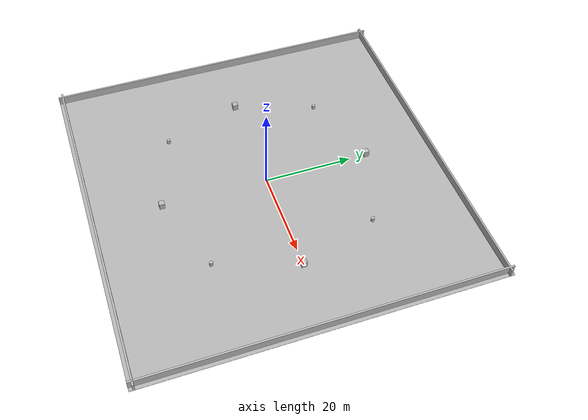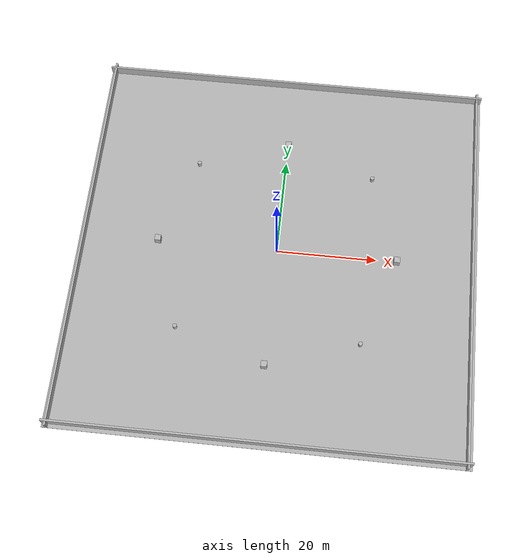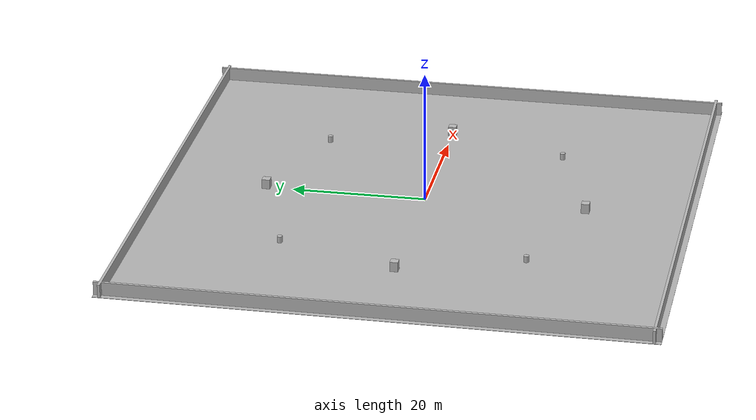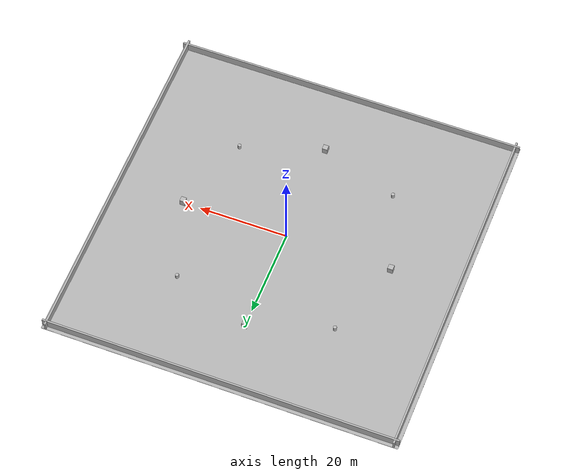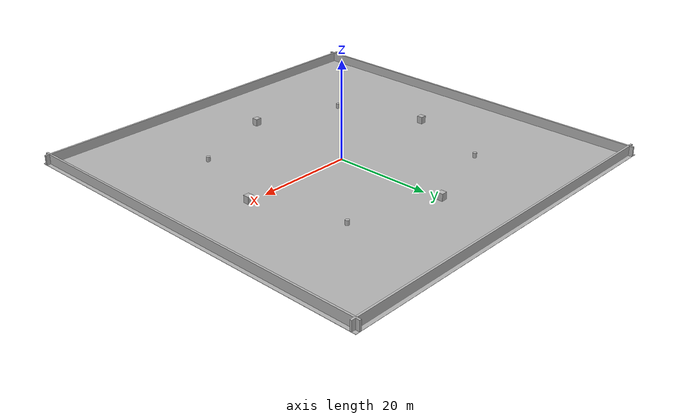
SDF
<?xml version="1.0"?>
<sdf version="1.6">
  <world name="rectangular_nav2_world">
    <include>
      <uri>model://sun</uri>
    </include>

    <scene>
      <shadows>false</shadows>
    </scene>

    <gui fullscreen="0">
      <camera name="user_camera">
        <pose frame="">0 0 40 0 1.57 0</pose>
        <view_controller>orbit</view_controller>
        <projection_type>perspective</projection_type>
      </camera>
    </gui>

    <physics type="ode">
      <max_step_size>0.001</max_step_size>
      <real_time_update_rate>1000</real_time_update_rate>
      <real_time_factor>1</real_time_factor>
      <ode>
        <solver>
          <type>quick</type>
          <iters>100</iters>
          <sor>1.3</sor>
        </solver>
        <constraints>
          <cfm>0.0</cfm>
          <erp>0.2</erp>
          <contact_max_correcting_vel>0.05</contact_max_correcting_vel>
          <contact_surface_layer>0.001</contact_surface_layer>
        </constraints>
      </ode>
    </physics>

    <!-- Large floor -->
    <model name="floor">
      <static>true</static>
      <link name="floor_link">
        <collision name="floor_collision">
          <pose>0 0 0 0 0 0</pose>
          <geometry>
            <box>
              <size>80 80 0.05</size>
            </box>
          </geometry>
        </collision>
        <visual name="floor_visual">
          <pose>0 0 0 0 0 0</pose>
          <geometry>
            <box>
              <size>80 80 0.05</size>
            </box>
          </geometry>
          <material>
            <ambient>0.7 0.7 0.7 1</ambient>
            <diffuse>0.7 0.7 0.7 1</diffuse>
          </material>
        </visual>
      </link>
    </model>

    <!-- Boundary walls -->
    <model name="boundary_walls">
      <static>true</static>
      <link name="walls">
        <collision name="north_collision"><pose>0 39 1 0 0 0</pose><geometry><box><size>80 0.4 2</size></box></geometry></collision>
        <visual    name="north_visual"><pose>0 39 1 0 0 0</pose><geometry><box><size>80 0.4 2</size></box></geometry></visual>
        <collision name="south_collision"><pose>0 -39 1 0 0 0</pose><geometry><box><size>80 0.4 2</size></box></geometry></collision>
        <visual    name="south_visual"><pose>0 -39 1 0 0 0</pose><geometry><box><size>80 0.4 2</size></box></geometry></visual>
        <collision name="east_collision"><pose>39 0 1 0 0 0</pose><geometry><box><size>0.4 80 2</size></box></geometry></collision>
        <visual    name="east_visual"><pose>39 0 1 0 0 0</pose><geometry><box><size>0.4 80 2</size></box></geometry></visual>
        <collision name="west_collision"><pose>-39 0 1 0 0 0</pose><geometry><box><size>0.4 80 2</size></box></geometry></collision>
        <visual    name="west_visual"><pose>-39 0 1 0 0 0</pose><geometry><box><size>0.4 80 2</size></box></geometry></visual>
      </link>
    </model>

    <!-- Spaced obstacle field -->
    <model name="obstacles">
      <static>true</static>
      <link name="obstacles_link">
        <!-- Cylinders -->
        <collision name="cyl_1"><pose>-18 -18 0.5 0 0 0</pose><geometry><cylinder><radius>0.4</radius><length>1.0</length></cylinder></geometry></collision>
        <visual    name="cyl_1_v"><pose>-18 -18 0.5 0 0 0</pose><geometry><cylinder><radius>0.4</radius><length>1.0</length></cylinder></geometry></visual>
        <collision name="cyl_2"><pose>-18 18 0.5 0 0 0</pose><geometry><cylinder><radius>0.4</radius><length>1.0</length></cylinder></geometry></collision>
        <visual    name="cyl_2_v"><pose>-18 18 0.5 0 0 0</pose><geometry><cylinder><radius>0.4</radius><length>1.0</length></cylinder></geometry></visual>
        <collision name="cyl_3"><pose>18 -18 0.5 0 0 0</pose><geometry><cylinder><radius>0.4</radius><length>1.0</length></cylinder></geometry></collision>
        <visual    name="cyl_3_v"><pose>18 -18 0.5 0 0 0</pose><geometry><cylinder><radius>0.4</radius><length>1.0</length></cylinder></geometry></visual>
        <collision name="cyl_4"><pose>18 18 0.5 0 0 0</pose><geometry><cylinder><radius>0.4</radius><length>1.0</length></cylinder></geometry></collision>
        <visual    name="cyl_4_v"><pose>18 18 0.5 0 0 0</pose><geometry><cylinder><radius>0.4</radius><length>1.0</length></cylinder></geometry></visual>

        <!-- Boxes -->
        <collision name="box_1"><pose>0 -24 0.75 0 0 0</pose><geometry><box><size>1.2 1.2 1.5</size></box></geometry></collision>
        <visual    name="box_1_v"><pose>0 -24 0.75 0 0 0</pose><geometry><box><size>1.2 1.2 1.5</size></box></geometry></visual>
        <collision name="box_2"><pose>0 24 0.75 0 0 0</pose><geometry><box><size>1.2 1.2 1.5</size></box></geometry></collision>
        <visual    name="box_2_v"><pose>0 24 0.75 0 0 0</pose><geometry><box><size>1.2 1.2 1.5</size></box></geometry></visual>
        <collision name="box_3"><pose>-24 0 0.75 0 0 0</pose><geometry><box><size>1.2 1.2 1.5</size></box></geometry></collision>
        <visual    name="box_3_v"><pose>-24 0 0.75 0 0 0</pose><geometry><box><size>1.2 1.2 1.5</size></box></geometry></visual>
        <collision name="box_4"><pose>24 0 0.75 0 0 0</pose><geometry><box><size>1.2 1.2 1.5</size></box></geometry></collision>
        <visual    name="box_4_v"><pose>24 0 0.75 0 0 0</pose><geometry><box><size>1.2 1.2 1.5</size></box></geometry></visual>
      </link>
    </model>
  </world>
</sdf>
